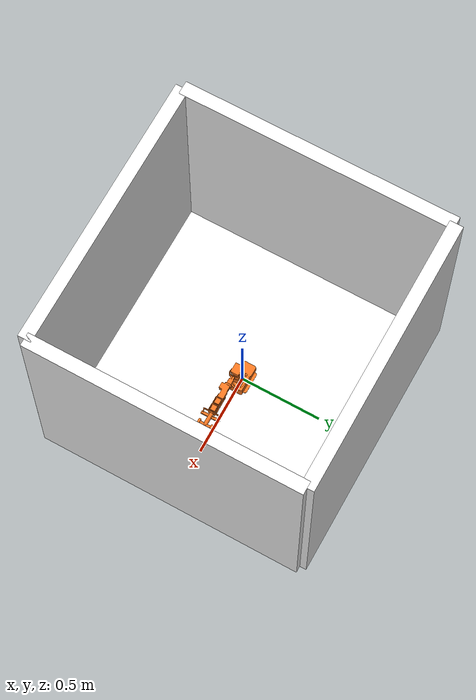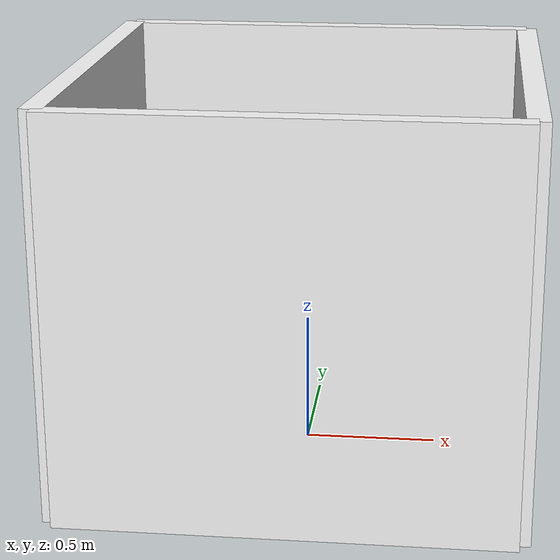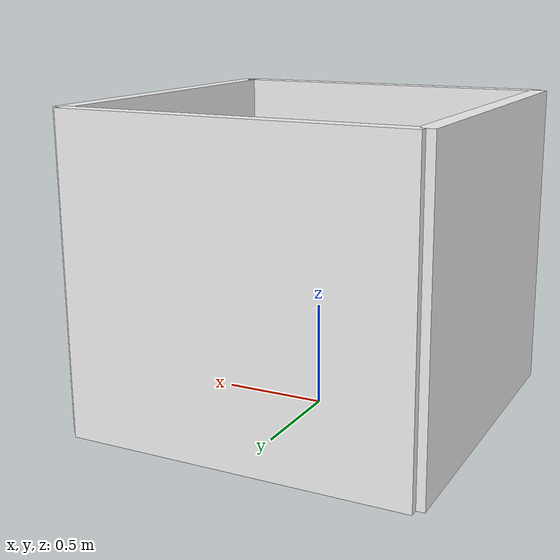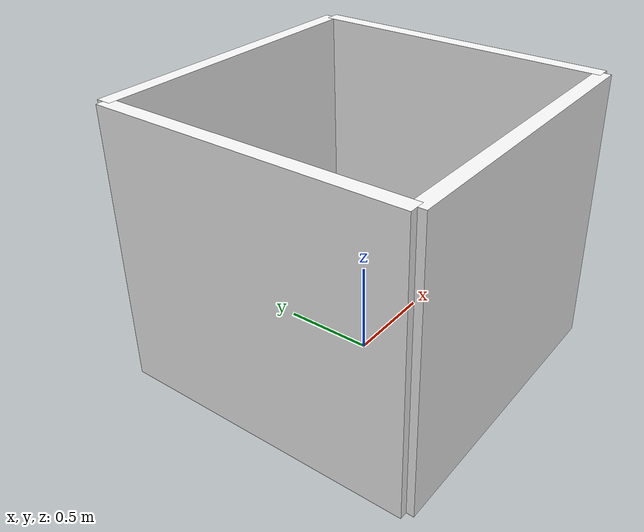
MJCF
<mujoco model="SGR532-motion">
  <visual>
    <headlight active="1" ambient="0.8 0.8 0.8" diffuse="0.6 0.6 0.6"/>
    <global offwidth="480" offheight="480"/>
  </visual>
  <compiler meshdir="meshes" angle="degree" autolimits="false"/>
  <option timestep="0.004" integrator="implicit"/>   <!-- 隐式积分, 让 stiff 位置伺服稳定 -->

  <default>
    <geom type="mesh" contype="0" conaffinity="0" rgba="0.95 0.45 0.12 1"/>
    <joint type="hinge" armature="0.001" damping="0.05" frictionloss="0.05"/>
    <default class="gripper">
      <joint type="slide" armature="0.001" damping="0.05" frictionloss="0.1"/>
    </default>
  </default>

  <asset>
    <mesh name="base" file="sagittarius_base_link.obj"/>
    <mesh name="l1"    file="link1.obj"/>
    <mesh name="l2"    file="link2.obj"/>
    <mesh name="l3"    file="link3.obj"/>
    <mesh name="l4"    file="link4.obj"/>
    <mesh name="l5"    file="link5.obj"/>
    <mesh name="l6"    file="link6.obj"/>
    <mesh name="gL"    file="link_gripper_left.obj"/>
    <mesh name="gR"    file="link_gripper_right.obj"/>
  </asset>

  <worldbody>
    <light dir="0 0 -1" diffuse="0.9 0.9 0.9" ambient="0.45 0.45 0.45" pos="0.5 0.5 1.5"/>

    <!-- 白色仿真环境: 地板 + 四周白墙围成小房间(~1.6m), 默认镜头能同时看到臂 -->
    <geom name="bg_floor" type="plane" size="0.80 0.80 0.02" rgba="0.97 0.97 0.97 1" pos="0 0 -0.02" contype="0" conaffinity="0"/>
    <geom name="bg_wall_xp" type="box" size="0.04 0.82 0.75" rgba="0.97 0.97 0.97 1" pos="0.82 0 0.75" contype="0" conaffinity="0"/>
    <geom name="bg_wall_xn" type="box" size="0.04 0.82 0.75" rgba="0.97 0.97 0.97 1" pos="-0.82 0 0.75" contype="0" conaffinity="0"/>
    <geom name="bg_wall_yp" type="box" size="0.82 0.04 0.75" rgba="0.97 0.97 0.97 1" pos="0 0.82 0.75" contype="0" conaffinity="0"/>
    <geom name="bg_wall_yn" type="box" size="0.82 0.04 0.75" rgba="0.97 0.97 0.97 1" pos="0 -0.82 0.75" contype="0" conaffinity="0"/>
    <!-- 相机固定在 +y 内墙壁面中心, 朝向机械臂 -->
    <camera name="arm_cam" fovy="45" pos="0 0.78 0.75" mode="targetbody" target="link6"/>

    <body name="base_link" pos="0 0 0">
      <geom name="base" mesh="base"/>

      <body name="link1" pos="0.045 0 0.07">
        <joint name="J1" axis="0 0 -1"/>
        <geom name="l1" mesh="l1"/>

        <body name="link2" pos="0 -0.0001 0.055">
          <joint name="J2" axis="0 -1 0"/>
          <geom name="l2" mesh="l2"/>

          <body name="link3" pos="0.033 -0.0001 0.179">
            <joint name="J3" axis="0 -1 0"/>
            <geom name="l3" mesh="l3"/>

            <body name="link4" pos="0.0845 0 0">
              <joint name="J4" axis="-1 0 0"/>
              <geom name="l4" mesh="l4"/>

              <body name="link5" pos="0.08435 0.00065 0">
                <joint name="J5" axis="0 -1 0"/>
                <geom name="l5" mesh="l5"/>

                <body name="link6" pos="0.061387 0 0">
                  <joint name="J6" axis="-1 0 0"/>
                  <geom name="l6" mesh="l6"/>

                  <body name="grasp" pos="0.0557 0 0">
                    <!-- link_grasping_frame 源 mesh 为空, 手工画夹爪连接杆(带 link6 与夹爪连通) -->
                    <geom name="fg_main" type="capsule" fromto="0 0 0 0.075 0 0" size="0.012" rgba="0.95 0.45 0.12 1"/>
                    <geom name="fg_arm_l" type="capsule" fromto="0.075 0 0 0.0695 0.033 0" size="0.010" rgba="0.95 0.45 0.12 1"/>
                    <geom name="fg_arm_r" type="capsule" fromto="0.075 0 0 0.0695 -0.033 0" size="0.010" rgba="0.95 0.45 0.12 1"/>

                    <body name="gripper_left" pos="0.0695 0.033 0">
                      <joint name="GL" class="gripper" axis="0 1 0" limited="true" range="-0.02 0.02"/>
                      <geom name="gL" mesh="gL"/>
                    </body>

                    <body name="gripper_right" pos="0.0695 -0.033 0">
                      <joint name="GR" class="gripper" axis="0 -1 0" limited="true" range="-0.02 0.02"/>
                      <geom name="gR" mesh="gR"/>
                    </body>

                  </body>
                </body>
              </body>
            </body>
          </body>
        </body>
      </body>
    </body>
  </worldbody>

  <!-- 位置伺服: 每个关节一个 position actuator, ctrl = 目标关节角(rad) -->
  <actuator>
    <position joint="J1" kp="40" kv="6"/>
    <position joint="J2" kp="40" kv="6"/>
    <position joint="J3" kp="40" kv="6"/>
    <position joint="J4" kp="30" kv="5"/>
    <position joint="J5" kp="30" kv="5"/>
    <position joint="J6" kp="30" kv="5"/>
    <position joint="GL" kp="20" kv="3" ctrllimited="true" ctrlrange="-0.02 0.02"/>
    <position joint="GR" kp="20" kv="3" ctrllimited="true" ctrlrange="-0.02 0.02"/>
  </actuator>
</mujoco>
